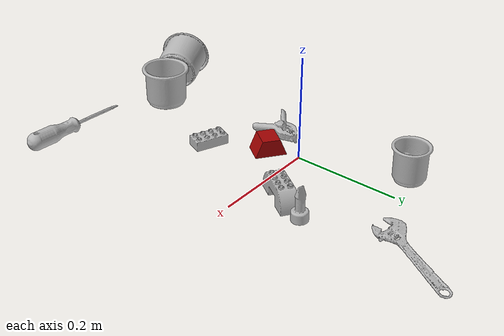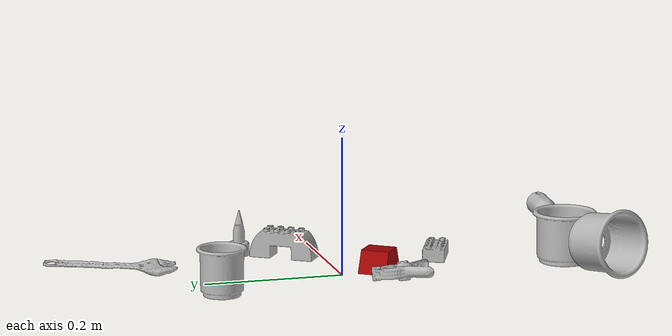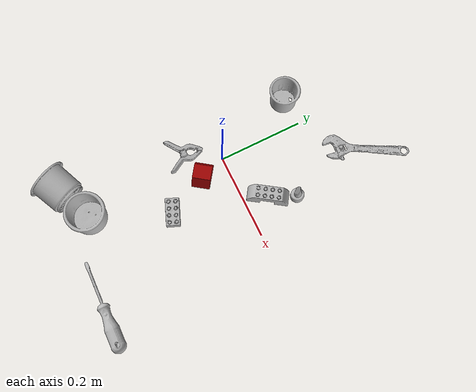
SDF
<sdf version="1.4">
  <world name="default">
    <light name="light1" type="point">
      <pose>0 0 1 0 0 0</pose>
      <diffuse>3 3 3 1</diffuse>
      <specular>3 3 3 1</specular>
    </light>
    <light name="light2" type="point">
      <pose>0 0.5 2 0 0 0</pose>
      <diffuse>1 1 1 1</diffuse>
      <specular>1 1 1 1</specular>
    </light>
    <light name="light3" type="point">
      <pose>0 0.5 2 0 0 0</pose>
      <diffuse>3 3 3 1</diffuse>
      <specular>3 3 3 1</specular>
    </light>
    <scene>
      <ambient>0.7 0.7 0.7</ambient>
    </scene>
    <model name="cup1">
      <link name="link_cup1">
        <collision name="default">
          <geometry>
            <mesh>
              <uri>model://d_cups/collision_meshes/collision.obj</uri>
              <scale>1.0 1.0 1.0</scale>
            </mesh>
          </geometry>
          <surface>
            <friction>
              <ode>
                <mu>0.5</mu>
                <mu2>0.5</mu2>
              </ode>
            </friction>
          <contact>
        <ode>
            <max_vel>0</max_vel>
            <min_depth>0.0001</min_depth>
            <kp>1e8</kp>
        </ode>
    </contact></surface>
        </collision>
        <visual name="default">
          <geometry>
            <mesh>
              <uri>model://d_cups/visual_meshes/visual.dae</uri>
              <scale>1.0 1.0 1.0</scale>
            </mesh>
          </geometry>
        </visual>
        <inertial>
          <mass>0.06783133745193481</mass>
          <pose>0.0008068059105426073 0.0019117397023364902 -0.002266651252284646 0.24012426461604838 -0.24709695541432683 0.5942481546461544</pose>
          <inertia>
            <ixx>5.679078e-05</ixx>
            <iyy>5.662642e-05</iyy>
            <izz>5.1405317e-05</izz>
            <ixy>0</ixy>
            <ixz>0</ixz>
            <iyz>0</iyz>
          </inertia>
        </inertial>
      </link>
      <pose>-0.06437995284795761 0.1902562528848648 0.03465899080038071 -8.092382583118171e-08 -6.529162358081349e-08 -2.4294036048611702</pose>
    </model>
    <model name="cup2">
      <link name="link_cup2">
        <collision name="default">
          <geometry>
            <mesh>
              <uri>model://h_cups/collision_meshes/collision.obj</uri>
              <scale>1.0 1.0 1.0</scale>
            </mesh>
          </geometry>
          <surface>
            <friction>
              <ode>
                <mu>0.5</mu>
                <mu2>0.5</mu2>
              </ode>
            </friction>
          <contact>
        <ode>
            <max_vel>0</max_vel>
            <min_depth>0.0001</min_depth>
            <kp>1e8</kp>
        </ode>
    </contact></surface>
        </collision>
        <visual name="default">
          <geometry>
            <mesh>
              <uri>model://h_cups/visual_meshes/visual.dae</uri>
              <scale>1.0 1.0 1.0</scale>
            </mesh>
          </geometry>
        </visual>
        <inertial>
          <mass>0.0420527309179306</mass>
          <pose>-2.702834171941504e-05 0.0002301869390066713 -0.0018405404407531023 -0.02436231807299455 0.06545237013505961 0.1288477560592675</pose>
          <inertia>
            <ixx>5.430915e-05</ixx>
            <iyy>5.3661057e-05</iyy>
            <izz>5.69554e-05</izz>
            <ixy>0</ixy>
            <ixz>0</ixz>
            <iyz>0</iyz>
          </inertia>
        </inertial>
      </link>
      <pose>-0.005894811823964119 -0.33070433139801025 0.03775801137089729 -2.2894094752506186e-07 -3.6597709898404355e-07 -0.8977560613467961</pose>
    </model>
    <model name="cup3">
      <link name="link_cup3">
        <collision name="default">
          <geometry>
            <mesh>
              <uri>model://i_cups/collision_meshes/collision.obj</uri>
              <scale>1.0 1.0 1.0</scale>
            </mesh>
          </geometry>
          <surface>
            <friction>
              <ode>
                <mu>0.5</mu>
                <mu2>0.5</mu2>
              </ode>
            </friction>
          <contact>
        <ode>
            <max_vel>0</max_vel>
            <min_depth>0.0001</min_depth>
            <kp>1e8</kp>
        </ode>
    </contact></surface>
        </collision>
        <visual name="default">
          <geometry>
            <mesh>
              <uri>model://i_cups/visual_meshes/visual.dae</uri>
              <scale>1.0 1.0 1.0</scale>
            </mesh>
          </geometry>
        </visual>
        <inertial>
          <mass>0.1172947883605957</mass>
          <pose>0.00011240218736929819 0.00016797319403849542 -0.0008579035638831556 -0.028982974239284674 -0.039873277979934216 -0.3459139003356122</pose>
          <inertia>
            <ixx>0.00016239638</ixx>
            <iyy>0.00016382721</iyy>
            <izz>0.00018150422</izz>
            <ixy>0</ixy>
            <ixz>0</ixz>
            <iyz>0</iyz>
          </inertia>
        </inertial>
      </link>
      <pose>-0.0871860608458519 -0.3645181655883789 0.044870056211948395 1.416242103889349 0.5732676206879012 -1.2362301202209833</pose>
    </model>
    <model name="toy1">
      <link name="link_toy1">
        <collision name="default">
          <geometry>
            <mesh>
              <uri>model://prism/collision_meshes/collision.obj</uri>
              <scale>0.5 0.5 0.5</scale>
            </mesh>
          </geometry>
          <surface>
            <friction>
              <ode>
                <mu>0.5</mu>
                <mu2>0.5</mu2>
              </ode>
            </friction>
          <contact>
        <ode>
            <max_vel>0</max_vel>
            <min_depth>0.0001</min_depth>
            <kp>1e8</kp>
        </ode>
    </contact></surface>
        </collision>
        <visual name="default">
          <geometry>
            <mesh>
              <uri>model://prism/visual_meshes/visual.dae</uri>
              <scale>0.5 0.5 0.5</scale>
            </mesh>
          </geometry>
        </visual>
        <inertial>
          <mass>0.04854338616132736</mass>
          <pose>-4.92679828312248e-05 -2.480786349678965e-07 -0.0016934549203142524 0.0 0.006559181697473799 0.0</pose>
          <inertia>
            <ixx>1.0952453e-05</ixx>
            <iyy>1.3236178e-05</iyy>
            <izz>1.6212734e-05</izz>
            <ixy>0</ixy>
            <ixz>0</ixz>
            <iyz>0</iyz>
          </inertia>
        </inertial>
      </link>
      <pose>0.015321767888963223 -0.05860221013426781 0.016084998846054077 1.876768647139375e-08 -5.3639332754725025e-08 -0.6239772250833889</pose>
    </model>
    <model name="toy2">
      <link name="link_toy2">
        <collision name="default">
          <geometry>
            <mesh>
              <uri>model://e_toy_airplane/collision_meshes/collision.obj</uri>
              <scale>1.0 1.0 1.0</scale>
            </mesh>
          </geometry>
          <surface>
            <friction>
              <ode>
                <mu>0.5</mu>
                <mu2>0.5</mu2>
              </ode>
            </friction>
          <contact>
        <ode>
            <max_vel>0</max_vel>
            <min_depth>0.0001</min_depth>
            <kp>1e8</kp>
        </ode>
    </contact></surface>
        </collision>
        <visual name="default">
          <geometry>
            <mesh>
              <uri>model://e_toy_airplane/visual_meshes/visual.dae</uri>
              <scale>1.0 1.0 1.0</scale>
            </mesh>
          </geometry>
        </visual>
        <inertial>
          <mass>0.014407381415367126</mass>
          <pose>0.00011740459740394726 -2.2482932763523422e-05 -0.011187206022441387 0.005518488041491648 0.009228285270614433 0.15041380385765837</pose>
          <inertia>
            <ixx>4.397297e-06</ixx>
            <iyy>4.352315e-06</iyy>
            <izz>1.3215607e-06</izz>
            <ixy>0</ixy>
            <ixz>0</ixz>
            <iyz>0</iyz>
          </inertia>
        </inertial>
      </link>
      <pose>0.15473026037216187 0.11386020481586456 0.03321255370974541 -7.4152462445443e-05 -0.0005727503417527283 -1.9808028615695872</pose>
    </model>
    <model name="toy3">
      <link name="link_toy3">
        <collision name="default">
          <geometry>
            <mesh>
              <uri>model://e_lego_duplo/collision_meshes/collision.obj</uri>
              <scale>1.0 1.0 1.0</scale>
            </mesh>
          </geometry>
          <surface>
            <friction>
              <ode>
                <mu>0.5</mu>
                <mu2>0.5</mu2>
              </ode>
            </friction>
          <contact>
        <ode>
            <max_vel>0</max_vel>
            <min_depth>0.0001</min_depth>
            <kp>1e8</kp>
        </ode>
    </contact></surface>
        </collision>
        <visual name="default">
          <geometry>
            <mesh>
              <uri>model://e_lego_duplo/visual_meshes/visual.dae</uri>
              <scale>1.0 1.0 1.0</scale>
            </mesh>
          </geometry>
        </visual>
        <inertial>
          <mass>0.059077512472867966</mass>
          <pose>0.00032560460385866463 0.0002348544221604243 0.0019521447829902172 -0.0225678114641467 -6.824730634042773e-05 -0.007625154901652298</pose>
          <inertia>
            <ixx>1.2319611e-05</ixx>
            <iyy>5.0562856e-05</iyy>
            <izz>4.923807e-05</izz>
            <ixy>0</ixy>
            <ixz>0</ixz>
            <iyz>0</iyz>
          </inertia>
        </inertial>
      </link>
      <pose>0.1266295462846756 0.053202249109745026 0.021808993071317673 -5.2337048931695184e-08 3.619313726495099e-08 0.9806325043402745</pose>
    </model>
    <model name="toy4">
      <link name="link_toy4">
        <collision name="default">
          <geometry>
            <mesh>
              <uri>model://c_lego_duplo/collision_meshes/collision.obj</uri>
              <scale>1.0 1.0 1.0</scale>
            </mesh>
          </geometry>
          <surface>
            <friction>
              <ode>
                <mu>0.5</mu>
                <mu2>0.5</mu2>
              </ode>
            </friction>
          <contact>
        <ode>
            <max_vel>0</max_vel>
            <min_depth>0.0001</min_depth>
            <kp>1e8</kp>
        </ode>
    </contact></surface>
        </collision>
        <visual name="default">
          <geometry>
            <mesh>
              <uri>model://c_lego_duplo/visual_meshes/visual.dae</uri>
              <scale>1.0 1.0 1.0</scale>
            </mesh>
          </geometry>
        </visual>
        <inertial>
          <mass>0.019630447030067444</mass>
          <pose>0.000316459103487432 0.00019464583601802588 0.0010453149443492293 -0.011520787241280632 0.0059000791517924015 0.031100331826339908</pose>
          <inertia>
            <ixx>7.554163e-06</ixx>
            <iyy>2.4130718e-06</iyy>
            <izz>8.827816e-06</izz>
            <ixy>0</ixy>
            <ixz>0</ixz>
            <iyz>0</iyz>
          </inertia>
        </inertial>
      </link>
      <pose>0.06569753587245941 -0.15832236409187317 0.011981493793427944 0.008019275092163193 -0.0020915778650958156 1.1571771273124378</pose>
    </model>
    <model name="hardware1">
      <link name="link_hardware1">
        <collision name="default">
          <geometry>
            <mesh>
              <uri>model://flat_screwdriver/collision_meshes/collision.obj</uri>
              <scale>1.0 1.0 1.0</scale>
            </mesh>
          </geometry>
          <surface>
            <friction>
              <ode>
                <mu>0.5</mu>
                <mu2>0.5</mu2>
              </ode>
            </friction>
          <contact>
        <ode>
            <max_vel>0</max_vel>
            <min_depth>0.0001</min_depth>
            <kp>1e8</kp>
        </ode>
    </contact></surface>
        </collision>
        <visual name="default">
          <geometry>
            <mesh>
              <uri>model://flat_screwdriver/visual_meshes/visual.dae</uri>
              <scale>1.0 1.0 1.0</scale>
            </mesh>
          </geometry>
        </visual>
        <inertial>
          <mass>0.05795019492506981</mass>
          <pose>-0.0489187128841877 -0.0006576800369657576 -0.0006140916375443339 -0.5616548332173045 -0.0032337243504420286 0.0069822829580931615</pose>
          <inertia>
            <ixx>6.846775e-06</ixx>
            <iyy>8.6921296e-05</iyy>
            <izz>8.688106e-05</izz>
            <ixy>0</ixy>
            <ixz>0</ixz>
            <iyz>0</iyz>
          </inertia>
        </inertial>
      </link>
      <pose>0.19227398931980133 -0.38491290807724 0.015338651835918427 -0.2144100897126041 0.04069453608485964 3.0986833641850655</pose>
    </model>
    <model name="hardware2">
      <link name="link_hardware2">
        <collision name="default">
          <geometry>
            <mesh>
              <uri>model://medium_clamp/collision_meshes/collision.obj</uri>
              <scale>1.0 1.0 1.0</scale>
            </mesh>
          </geometry>
          <surface>
            <friction>
              <ode>
                <mu>0.5</mu>
                <mu2>0.5</mu2>
              </ode>
            </friction>
          <contact>
        <ode>
            <max_vel>0</max_vel>
            <min_depth>0.0001</min_depth>
            <kp>1e8</kp>
        </ode>
    </contact></surface>
        </collision>
        <visual name="default">
          <geometry>
            <mesh>
              <uri>model://medium_clamp/visual_meshes/visual.dae</uri>
              <scale>1.0 1.0 1.0</scale>
            </mesh>
          </geometry>
        </visual>
        <inertial>
          <mass>0.028340468183159828</mass>
          <pose>0.0053909942507743835 0.0003953247796744108 -0.0001222157443407923 -0.001226920261124021 0.0025845025680982987 0.03820769890719856</pose>
          <inertia>
            <ixx>7.720961e-06</ixx>
            <iyy>1.1236185e-05</iyy>
            <izz>1.7307093e-05</izz>
            <ixy>0</ixy>
            <ixz>0</ixz>
            <iyz>0</iyz>
          </inertia>
        </inertial>
      </link>
      <pose>-0.04728105664253235 -0.07787773758172989 0.013533396646380424 0.07722133477102179 0.08543880404976172 1.3825783703149985</pose>
    </model>
    <model name="hardware3">
      <link name="link_hardware3">
        <collision name="default">
          <geometry>
            <mesh>
              <uri>model://adjustable_wrench/collision_meshes/collision.obj</uri>
              <scale>1.0 1.0 1.0</scale>
            </mesh>
          </geometry>
          <surface>
            <friction>
              <ode>
                <mu>0.5</mu>
                <mu2>0.5</mu2>
              </ode>
            </friction>
          <contact>
        <ode>
            <max_vel>0</max_vel>
            <min_depth>0.0001</min_depth>
            <kp>1e8</kp>
        </ode>
    </contact></surface>
        </collision>
        <visual name="default">
          <geometry>
            <mesh>
              <uri>model://adjustable_wrench/visual_meshes/visual.dae</uri>
              <scale>1.0 1.0 1.0</scale>
            </mesh>
          </geometry>
        </visual>
        <inertial>
          <mass>0.023935195058584213</mass>
          <pose>0.03740980476140976 -0.0028968877159059048 -0.001114922808483243 -0.014473210185193002 0.006656019736435525 -0.010954188403863873</pose>
          <inertia>
            <ixx>4.898683e-06</ixx>
            <iyy>5.733333e-05</iyy>
            <izz>6.197185e-05</izz>
            <ixy>0</ixy>
            <ixz>0</ixz>
            <iyz>0</iyz>
          </inertia>
        </inertial>
      </link>
      <pose>0.12620672583580017 0.30489879846572876 0.006125038955360651 0.04675925422931058 -0.02927061544742077 -2.092130468533834</pose>
    </model>
  <physics type="ode">
      <max_contacts>50</max_contacts>
      <ode>
        <solver>
          <type>quick</type>
          <iters>75</iters>
        </solver>
        <constraints>
          <contact_max_correcting_vel>0</contact_max_correcting_vel>
          <contact_surface_layer>0</contact_surface_layer>
        </constraints>
      </ode>
    </physics></world>
</sdf>
